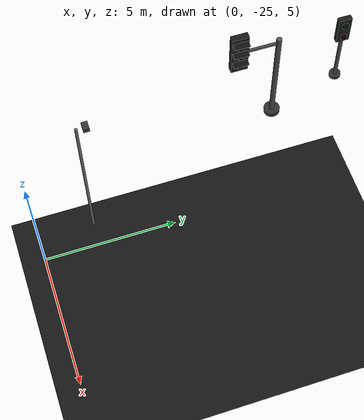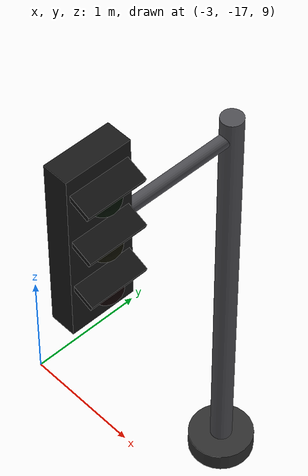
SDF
<sdf version="1.6">
 <world name="v2x_city_scene">
  <model name="ground_plane">
   <static>true</static>
   <link name="link">
    <collision name="collision">
     <geometry><plane><normal>0 0 1</normal><size>200 200</size></plane></geometry>
    </collision>
    <visual name="visual">
     <geometry><plane><normal>0 0 1</normal><size>200 200</size></plane></geometry>
     <material>
      <ambient>0.05 0.05 0.05 1</ambient>
      <diffuse>0.08 0.08 0.08 1</diffuse>
      <specular>0.0 0.0 0.0 1</specular>
     </material>
    </visual>
   </link>
  </model>
  <model name="bldg_school">
   <static>true</static>
   <pose>-8.62 -8.88 9.2 0 0 0</pose>
   <link name="link">
    <collision name="c"><geometry><box><size>10.85 8.35 5</size></box></geometry></collision>
   </link>
  </model>
  <model name="speed_cam">
   <static>true</static>
   <pose>0 -23 12.7 0 0 0</pose>
   <link name="link">
    <visual name="pole">
     <pose>0 0 -3 0 0 0</pose>
     <geometry><cylinder><radius>0.05</radius><length>6.0</length></cylinder></geometry>
     <material><ambient>0.3 0.3 0.3 1</ambient><diffuse>0.4 0.4 0.4 1</diffuse></material>
    </visual>
    <collision name="pole_collision">
     <pose>0 0 -3 0 0 0</pose>
     <geometry><cylinder><radius>0.05</radius><length>6.0</length></cylinder></geometry>
    </collision>
    <visual name="camera_box">
     <pose>0 0.3 0 0 0 0</pose>
     <geometry><box><size>0.3 0.2 0.15</size></box></geometry>
     <material><ambient>0.1 0.1 0.1 1</ambient><diffuse>0.2 0.2 0.2 1</diffuse></material>
    </visual>
    <sensor name="speed_camera_sensor" type="camera">
     <pose>0 0.3 0 0 0.5 0</pose>
     <always_on>true</always_on>
     <update_rate>5</update_rate>
     <visualize>true</visualize>
     <camera name="speed_cam">
      <horizontal_fov>1.0</horizontal_fov>
      <image><width>640</width><height>480</height><format>R8G8B8</format></image>
      <clip><near>0.05</near><far>100</far></clip>
     </camera>
     <plugin name="gazebo_ros_camera" filename="libgazebo_ros_camera.so">
      <ros>
       <namespace>/speed_cam</namespace>
       <remapping>~/image_raw:=camera/image_raw</remapping>
       <remapping>~/camera_info:=camera/camera_info</remapping>
      </ros>
      <camera_name>speed_cam</camera_name>
      <frame_name>speed_cam/camera_link</frame_name>
     </plugin>
    </sensor>
   </link>
  </model>
  <model name="tl_j2_ew">
   <static>true</static>
   <pose>-2.6 -15.3 6.7 0 0 1.5708</pose>
   <link name="pole_link">
    <visual name="base_visual">
     <pose>0 0 0.09 0 0 0</pose>
     <geometry><cylinder><radius>0.30</radius><length>0.18</length></cylinder></geometry>
     <material><ambient>0.10 0.10 0.10 1</ambient><diffuse>0.18 0.18 0.18 1</diffuse></material>
    </visual>
    <visual name="pole_visual">
     <pose>0 0 2.20 0 0 0</pose>
     <geometry><cylinder><radius>0.10</radius><length>4.10</length></cylinder></geometry>
     <material><ambient>0.16 0.16 0.16 1</ambient><diffuse>0.30 0.30 0.32 1</diffuse></material>
    </visual>
    <visual name="arm_visual">
     <pose>-0.75 0 4.05 0 1.5708 0</pose>
     <geometry><cylinder><radius>0.06</radius><length>1.60</length></cylinder></geometry>
     <material><ambient>0.16 0.16 0.16 1</ambient><diffuse>0.30 0.30 0.32 1</diffuse></material>
    </visual>
    <visual name="housing_visual">
     <pose>-1.45 0.02 4.05 0 0 0</pose>
     <geometry><box><size>0.62 0.24 1.70</size></box></geometry>
     <material><ambient>0.04 0.04 0.04 1</ambient><diffuse>0.09 0.09 0.09 1</diffuse></material>
    </visual>
    <visual name="red_visor">
     <pose>-1.45 -0.15 3.70 0.38 0 0</pose>
     <geometry><box><size>0.56 0.30 0.05</size></box></geometry>
     <material><ambient>0.03 0.03 0.03 1</ambient><diffuse>0.07 0.07 0.07 1</diffuse></material>
    </visual>
    <visual name="yellow_visor">
     <pose>-1.45 -0.15 4.20 0.38 0 0</pose>
     <geometry><box><size>0.56 0.30 0.05</size></box></geometry>
     <material><ambient>0.03 0.03 0.03 1</ambient><diffuse>0.07 0.07 0.07 1</diffuse></material>
    </visual>
    <visual name="green_visor">
     <pose>-1.45 -0.15 4.70 0.38 0 0</pose>
     <geometry><box><size>0.56 0.30 0.05</size></box></geometry>
     <material><ambient>0.03 0.03 0.03 1</ambient><diffuse>0.07 0.07 0.07 1</diffuse></material>
    </visual>
    <collision name="pole_collision">
     <pose>0 0 2.20 0 0 0</pose>
     <geometry><cylinder><radius>0.13</radius><length>4.10</length></cylinder></geometry>
    </collision>
   </link>
   <link name="red_link">
    <pose>-1.45 -0.13 3.55 0 0 0</pose>
    <visual name="red_visual">
     <geometry><sphere><radius>0.15</radius></sphere></geometry>
     <material><ambient>0.05 0 0 1</ambient><diffuse>0.05 0 0 1</diffuse><emissive>0.05 0 0 1</emissive></material>
    </visual>
   </link>
   <link name="yellow_link">
    <pose>-1.45 -0.13 4.05 0 0 0</pose>
    <visual name="yellow_visual">
     <geometry><sphere><radius>0.15</radius></sphere></geometry>
     <material>
      <ambient>0.05 0.05 0 1</ambient>
      <diffuse>0.05 0.05 0 1</diffuse>
      <emissive>0.05 0.05 0 1</emissive>
     </material>
    </visual>
   </link>
   <link name="green_link">
    <pose>-1.45 -0.13 4.55 0 0 0</pose>
    <visual name="green_visual">
     <geometry><sphere><radius>0.15</radius></sphere></geometry>
     <material><ambient>0 0.05 0 1</ambient><diffuse>0 0.05 0 1</diffuse><emissive>0 0.05 0 1</emissive></material>
    </visual>
   </link>
   <plugin name="traffic_light" filename="libtraffic_light_plugin.so">
    <topic>traffic_light/J2_ew/state</topic>
   </plugin>
  </model>
  <model name="tl_j2_ew_ped">
   <static>true</static>
   <pose>-3.4 -12.4 6.7 0 0 1.5708</pose>
   <link name="link">
    <visual name="base_visual">
     <pose>0 0 0.07 0 0 0</pose>
     <geometry><cylinder><radius>0.22</radius><length>0.14</length></cylinder></geometry>
     <material><ambient>0.10 0.10 0.10 1</ambient><diffuse>0.18 0.18 0.18 1</diffuse></material>
    </visual>
    <visual name="pole_visual">
     <pose>0 0 1.45 0 0 0</pose>
     <geometry><cylinder><radius>0.075</radius><length>2.80</length></cylinder></geometry>
     <material><ambient>0.16 0.16 0.16 1</ambient><diffuse>0.30 0.30 0.32 1</diffuse></material>
    </visual>
    <visual name="housing_visual">
     <pose>0 0.02 2.75 0 0 0</pose>
     <geometry><box><size>0.50 0.20 1.15</size></box></geometry>
     <material><ambient>0.04 0.04 0.04 1</ambient><diffuse>0.09 0.09 0.09 1</diffuse></material>
    </visual>
    <visual name="red_hand">
     <pose>0 -0.11 2.45 0 0 0</pose>
     <geometry><sphere><radius>0.13</radius></sphere></geometry>
     <material><ambient>0.05 0 0 1</ambient><diffuse>0.05 0 0 1</diffuse><emissive>0.05 0 0 1</emissive></material>
    </visual>
    <visual name="green_walking">
     <pose>0 -0.11 3.05 0 0 0</pose>
     <geometry><sphere><radius>0.13</radius></sphere></geometry>
     <material><ambient>0 0.05 0 1</ambient><diffuse>0 0.05 0 1</diffuse><emissive>0 0.05 0 1</emissive></material>
    </visual>
    <collision name="pole_collision">
     <pose>0 0 1.45 0 0 0</pose>
     <geometry><cylinder><radius>0.10</radius><length>2.80</length></cylinder></geometry>
    </collision>
   </link>
   <plugin name="traffic_light_ped" filename="libv2x_traffic_light.so">
    <state_topic>traffic_light/J2_ew/pedestrian</state_topic>
    <link_name>link</link_name>
    <is_pedestrian>true</is_pedestrian>
   </plugin>
  </model>
 </world>
</sdf>
